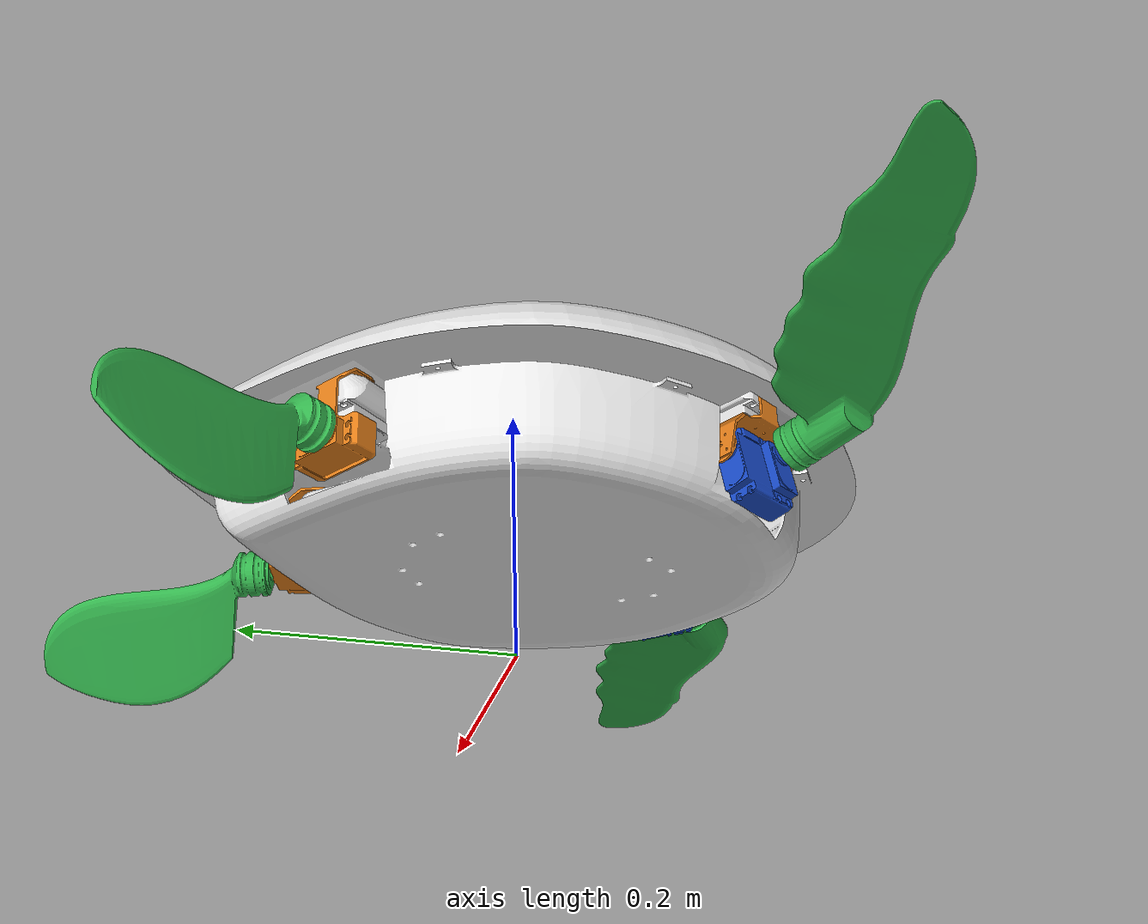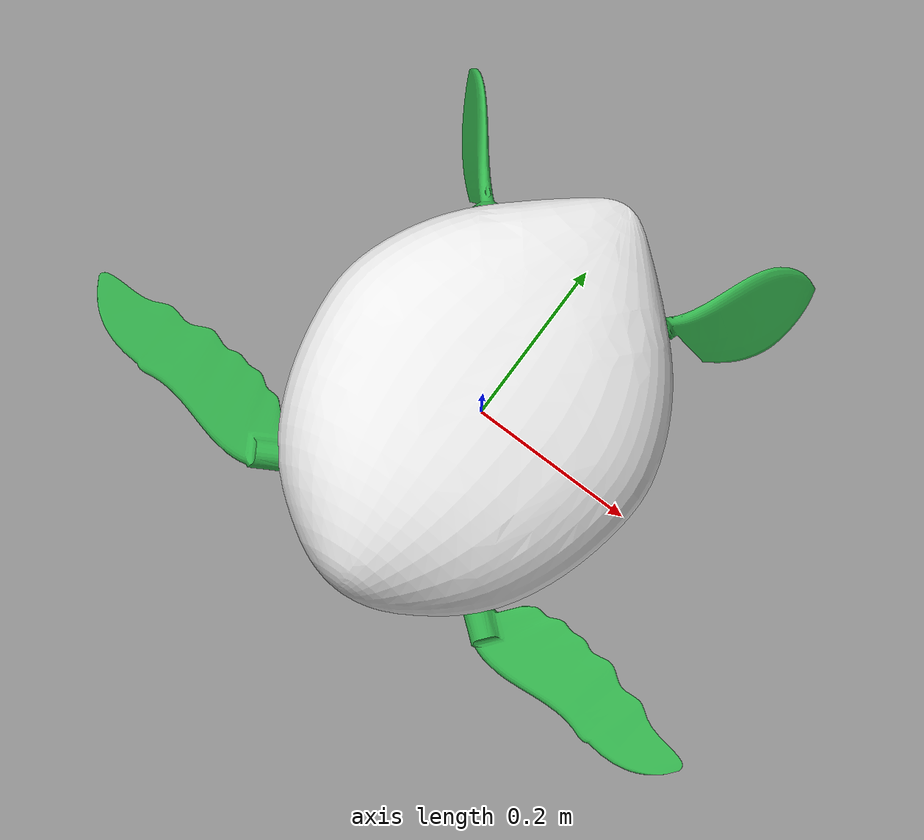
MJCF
<?xml version='1.0' encoding='utf-8' ?>
<mujoco model="turtle">
  <compiler angle="radian" meshdir="./assets/" autolimits="true" />
  <option timestep="0.001" iterations="100" solver="Newton" tolerance="1e-10" />
  <size njmax="500" nconmax="100" />

  <default>
    <default class="turtle">
      <geom friction="0.6" margin="0.001" condim="1" />
      <joint
                damping="5.0"
                armature="0.1"
                frictionloss="0.5"
                actuatorfrcrange="-100 100"
            />
      <default class="leg_joint">
        <joint axis="0 0 1" />
      </default>
      <default class="thigh_joint">
        <joint />
      </default>
      <default class="calf_joint">
        <joint />
      </default>
      <default class="visual">
        <geom type="mesh" contype="0" conaffinity="0" group="1" density="0" />
      </default>
      <default class="collision">
        <geom type="mesh" group="3" />
      </default>
      <default class="foot">
        <geom
                    type="mesh"
                    group="3"
                    friction="0.8 0.02 0.01"
                    condim="6"
                    solimp="0.015 1 0.031"
                />
      </default>
    </default>
  </default>

  <asset>
    <mesh name="base_link" file="base_link.STL" />
    <mesh name="link1" file="link1.STL" />
    <mesh name="link2" file="link2.STL" />
    <mesh name="link3" file="link3.STL" />
    <mesh name="link4" file="link4.STL" />
    <mesh name="link5" file="link5.STL" />
    <mesh name="link6" file="link6.STL" />
    <mesh name="link7" file="link7.STL" />
    <mesh name="link8" file="link8.STL" />
    <mesh name="link9" file="link9.STL" />
    <mesh name="link10" file="link10.STL" />
  </asset>

  <worldbody>
    <light name="spotlight" mode="targetbodycom" target="base" pos="0 -1 2" />
    <body name="base" pos="0 0 0.14" childclass="turtle">
      <camera
                name="tracking"
                mode="trackcom"
                pos="0 -1 0.8"
                xyaxes="1 0 0 0 1 1"
            />
      <inertial
                pos="0 0 0"
                mass="2.57"
                diaginertia="2.0474075719e-02 3.0915718791e-02 4.7708505822e-02"
                quat="0.50705678 0.49336323 0.49295137 -0.50644357"
            />
      <freejoint />
      <site name="imu" pos="0 0 0" size="0.01" group="5" rgba="1 0 0 1" />
      <site name="head" pos="0 -0.26 0" size="0.01" group="5" rgba="0 1 0 1" />
      <geom class="visual" mesh="base_link" rgba="0.89412 0.89412 0.89412 1" />
      <geom class="collision" mesh="base_link" />

      <body
                name="link1"
                pos="0.097388 -0.14699 0"
                quat="0.156945 0 0 -0.987607"
            >
        <inertial
                    pos="-0.0086132 0.0041463 0.0062549"
                    quat="0.317872 0.355925 0.562736 0.674983"
                    mass="0.13"
                    diaginertia="7.1784314145e-05 5.8864712176e-05 3.6855217919e-05"
                />
        <joint name="joint1" class="leg_joint" range="-0.502 0.879" />
        <geom class="visual" mesh="link1" rgba="0.9 0.5 0.1 1" />
        <body
                    name="link2"
                    pos="-0.0041022 0.0062787 -0.022095"
                    quat="0.995951 0.0752598 0.0491699 -1.34309e-07"
                >
          <inertial
                        pos="-6.1964e-05 -0.0023986 -0.0094406"
                        quat="0.449436 -0.11108 0.0599329 0.884351"
                        mass="0.17"
                        diaginertia="5.3134166331e-05 4.5398271697e-05 2.4626387531e-05"
                    />
          <joint
                        name="joint2"
                        class="thigh_joint"
                        axis="0.837159 0.546959 0"
                        range="-0.973 0.126"
                    />
          <geom class="visual" mesh="link2" rgba="0.1 0.3 0.8 1" />
          <body
                        name="link3"
                        pos="0.006714 0.0043866 0"
                        quat="0.997208 -0.0395713 0.060568 -0.0184833"
                    >
            <inertial
                            pos="-0.105472 0.0699603 -0.0292503"
                            quat="0.190864 0.63175 -0.0589225 0.748993"
                            mass="0.1"
                            diaginertia="5.9434614625e-04 5.5870634206e-04 4.0902904309e-05"
                        />
            <joint
                            name="joint3"
                            class="calf_joint"
                            axis="-0.529938 0.811107 -0.247529"
                            range="-1.44 0.4"
                        />
            <geom class="visual" mesh="link3" rgba="0.2 0.7 0.3 1" />
            <geom class="foot" mesh="link3" />
            <site
                            name="end_leg1"
                            pos="-0.23 0.13 -0.06"
                            size="0.03"
                            group="5"
                            rgba="0 0 1 1"
                        />
          </body>
        </body>
      </body>

      <body
                name="link4"
                pos="-0.097388 -0.14699 0"
                quat="0.0718843 0 0 -0.997413"
            >
        <inertial
                    pos="0.00945099 -0.00143479 0.00625487"
                    quat="0.642727 0.738738 0.104452 0.173949"
                    mass="0.13"
                    diaginertia="7.1783850489e-05 5.8864712176e-05 3.6855217919e-05"
                />
        <joint name="joint4" class="leg_joint" range="-0.722 0.722" />
        <geom class="visual" mesh="link4" rgba="0.9 0.5 0.1 1" />
        <body
                    name="link5"
                    pos="0.006929 0.0028705 -0.022095"
                    quat="0.989092 0.0563725 -0.136083 -2.55851e-07"
                >
          <inertial
                        pos="-0.000281988 -0.00159307 -0.00960547"
                        quat="0.983141 -0.01178 0.0676199 0.169474"
                        mass="0.17"
                        diaginertia="5.3134181569e-05 4.5398809173e-05 2.4625792435e-05"
                    />
          <joint
                        name="joint5"
                        class="thigh_joint"
                        axis="-0.38273 0.92386 0"
                        range="0.126 1.32"
                    />
          <geom class="visual" mesh="link5" rgba="0.1 0.3 0.8 1" />
          <body
                        name="link6"
                        pos="0.057826 0.032637 -0.0089085"
                        quat="0.999811 0.0178174 0.00738118 -0.00260652"
                    >
            <inertial
                            pos="0.0685729 -0.0254331 -0.00175279"
                            quat="0.139658 0.721782 -0.0254878 0.677405"
                            mass="0.1"
                            diaginertia="5.9435981298e-04 5.5871765042e-04 4.0903648177e-05"
                        />
            <joint
                            name="joint6"
                            class="calf_joint"
                            axis="0.915537 0.379279 -0.13394"
                            range="-0.345 1.6"
                        />
            <geom class="visual" mesh="link6" rgba="0.2 0.7 0.3 1" />
            <geom class="foot" mesh="link6" />
            <site
                            name="end_leg2"
                            pos="0.21 -0.05 -0.01"
                            size="0.03"
                            group="5"
                            rgba="1 1 0 1"
                        />
          </body>
        </body>
      </body>

      <body name="link7" pos="-0.082932 0.13664 0" quat="0.000996327 0 0 1">
        <inertial
                    pos="0.0092671 -0.0132743 -0.0340547"
                    quat="0.413574 0.21531 0.674467 0.572444"
                    mass="0.125"
                    diaginertia="3.6406630884e-05 3.4960917383e-05 1.9429239291e-05"
                />
        <joint name="joint7" class="leg_joint" range="-1.04 0.84" />
        <geom class="visual" mesh="link7" rgba="0.9 0.5 0.1 1" />
        <body
                    name="link8"
                    pos="0.0073704 0.0055061 -0.040945"
                    quat="0.521581 0.510639 -0.683521 6.6209e-06"
                >
          <inertial
                        pos="0.0430833 -0.123511 0.00876104"
                        quat="0.511493 0.570328 -0.362187 0.530963"
                        mass="0.09"
                        diaginertia="2.9427892370e-04 2.5190648263e-04 4.5640454404e-05"
                    />
          <joint
                        name="joint8"
                        class="thigh_joint"
                        axis="0.59849 -0.80113 0"
                        range="-1.63 1.26"
                    />
          <geom class="visual" mesh="link8" rgba="0.2 0.7 0.3 1" />
          <geom class="foot" mesh="link8" />
          <site
                        name="end_leg3"
                        pos="0.005 -0.17 0.025"
                        size="0.02"
                        group="5"
                        rgba="1 0 1 1"
                    />
        </body>
      </body>

      <body name="link9" pos="0.082932 0.13664 0" quat="0.277986 0 0 -0.960585">
        <inertial
                    pos="-0.012138 -0.0107123 -0.0340547"
                    quat="0.695276 0.617537 0.342612 0.133626"
                    mass="0.125"
                    diaginertia="3.6406547554e-05 3.4960837362e-05 1.9429194820e-05"
                />
        <joint name="joint9" class="leg_joint" range="-1.22 0.691" />
        <geom class="visual" mesh="link9" rgba="0.9 0.5 0.1 1" />
        <body
                    name="link10"
                    pos="-0.05229 -0.031301 -0.040945"
                    quat="0.389294 0.709864 0.586978 -8.9408e-06"
                >
          <inertial
                        pos="-0.0241032 -0.0720448 -0.00412934"
                        quat="0.606437 0.405935 -0.596477 0.334165"
                        mass="0.09"
                        diaginertia="2.9428514934e-04 2.5190076300e-04 4.5652158742e-05"
                    />
          <joint
                        name="joint10"
                        class="thigh_joint"
                        axis="-0.770658 -0.637249 0"
                        range="-0.597 2.39"
                    />
          <geom class="visual" mesh="link10" rgba="0.2 0.7 0.3 1" />
          <geom class="foot" mesh="link10" />
          <site
                        name="end_leg4"
                        pos="0 -0.14 -0.01"
                        size="0.02"
                        group="5"
                        rgba="0 1 1 1"
                    />
        </body>
      </body>
    </body>
  </worldbody>

  <actuator>
    <position
            name="joint1_motor"
            joint="joint1"
            kp="20"
            kv="1"
            forcerange="-22 22"
            ctrlrange="-0.502 0.879"
        />
    <position
            name="joint2_motor"
            joint="joint2"
            kp="20"
            kv="1"
            forcerange="-22 22"
            ctrlrange="-0.973 0.126"
        />
    <position
            name="joint3_motor"
            joint="joint3"
            kp="20"
            kv="1"
            forcerange="-22 22"
            ctrlrange="-1.44 0.4"
        />
    <position
            name="joint4_motor"
            joint="joint4"
            kp="20"
            kv="1"
            forcerange="-22 22"
            ctrlrange="-0.722 0.722"
        />
    <position
            name="joint5_motor"
            joint="joint5"
            kp="20"
            kv="1"
            forcerange="-22 22"
            ctrlrange="0.126 1.32"
        />
    <position
            name="joint6_motor"
            joint="joint6"
            kp="20"
            kv="1"
            forcerange="-22 22"
            ctrlrange="-0.345 1.6"
        />
    <position
            name="joint7_motor"
            joint="joint7"
            kp="20"
            kv="1"
            forcerange="-22 22"
            ctrlrange="-1.04 0.84"
        />
    <position
            name="joint8_motor"
            joint="joint8"
            kp="20"
            kv="1"
            forcerange="-22 22"
            ctrlrange="-1.63 1.26"
        />
    <position
            name="joint9_motor"
            joint="joint9"
            kp="20"
            kv="1"
            forcerange="-22 22"
            ctrlrange="-1.22 0.691"
        />
    <position
            name="joint10_motor"
            joint="joint10"
            kp="20"
            kv="1"
            forcerange="-22 22"
            ctrlrange="-0.597 2.39"
        />
   </actuator>

  <keyframe>
    <key
            name="home"
            qpos="0 0 0.2 1 0 0 0 0.189 -0.424 -0.520 0 0.723 0.628 -0.100 -0.185 -0.265 0.897"
            ctrl="0.189 -0.424 -0.520 0 0.723 0.628 -0.100 -0.185 -0.265 0.897"
        />
  </keyframe>
 </mujoco>
